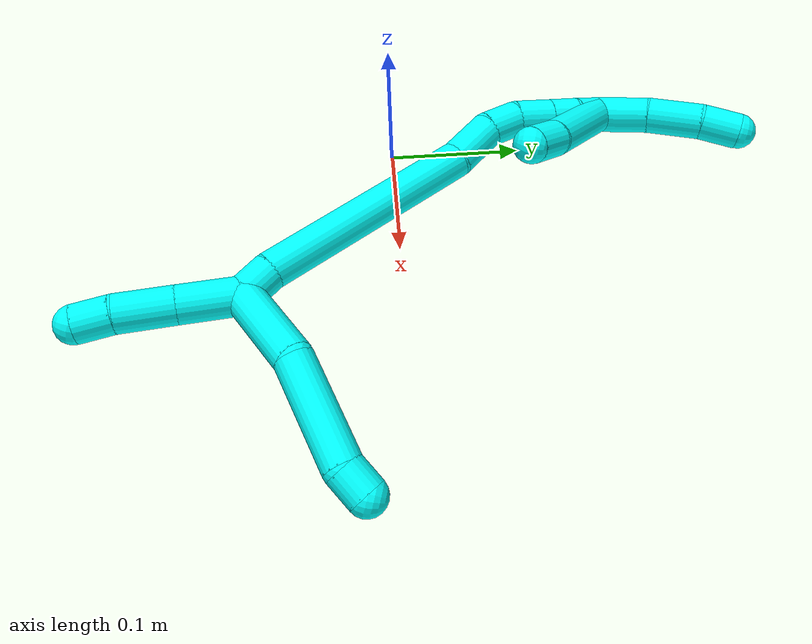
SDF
<sdf version="1.7">
 <world name="default">
  <model name="3">
   <static>0</static>
   <link name="3">
    <collision name="collision-cylinder-e_1_2_8">
     <pose>0.020603 0.005877 -0.020853 -2.86691 0.760287 -2.47556</pose>
     <geometry><cylinder><radius>0.0125</radius><length>0.059795</length></cylinder></geometry>
     <surface>
      <friction><ode><mu>1.16</mu><mu2>1.16</mu2><slip1>0</slip1><slip2>0</slip2></ode></friction>
      <contact><ode><kp>1e+06</kp><kd>1</kd><max_vel>0</max_vel><min_depth>0.001</min_depth></ode></contact>
     </surface>
    </collision>
    <visual name="visual-cylinder-e_1_2_8">
     <pose>0.020603 0.005877 -0.020853 -2.86691 0.760287 -2.47556</pose>
     <geometry><cylinder><radius>0.0125</radius><length>0.059795</length></cylinder></geometry>
     <material><ambient>0.003922 1 0.996078 1</ambient></material>
    </visual>
    <collision name="collision-cylinder-e_2_8_9">
     <pose>0.068697 0.007567 -0.063113 2.94848 0.900036 2.74584</pose>
     <geometry><cylinder><radius>0.0125</radius><length>0.070187</length></cylinder></geometry>
     <surface>
      <friction><ode><mu>1.16</mu><mu2>1.16</mu2><slip1>0</slip1><slip2>0</slip2></ode></friction>
      <contact><ode><kp>1e+06</kp><kd>1</kd><max_vel>0</max_vel><min_depth>0.001</min_depth></ode></contact>
     </surface>
    </collision>
    <visual name="visual-cylinder-e_2_8_9">
     <pose>0.068697 0.007567 -0.063113 2.94848 0.900036 2.74584</pose>
     <geometry><cylinder><radius>0.0125</radius><length>0.070187</length></cylinder></geometry>
     <material><ambient>0.003922 1 0.996078 1</ambient></material>
    </visual>
    <collision name="collision-cylinder-e_3_9_6">
     <pose>0.101646 0.001448 -0.092685 2.90915 0.576854 2.39183</pose>
     <geometry><cylinder><radius>0.0125</radius><length>0.020018</length></cylinder></geometry>
     <surface>
      <friction><ode><mu>1.16</mu><mu2>1.16</mu2><slip1>0</slip1><slip2>0</slip2></ode></friction>
      <contact><ode><kp>1e+06</kp><kd>1</kd><max_vel>0</max_vel><min_depth>0.001</min_depth></ode></contact>
     </surface>
    </collision>
    <visual name="visual-cylinder-e_3_9_6">
     <pose>0.101646 0.001448 -0.092685 2.90915 0.576854 2.39183</pose>
     <geometry><cylinder><radius>0.0125</radius><length>0.020018</length></cylinder></geometry>
     <material><ambient>0.003922 1 0.996078 1</ambient></material>
    </visual>
    <collision name="collision-cylinder-e_1_2_10">
     <pose>0.007021 -0.002507 0.018394 0.13544 0.36156 0.024792</pose>
     <geometry><cylinder><radius>0.0125</radius><length>0.039694</length></cylinder></geometry>
     <surface>
      <friction><ode><mu>1.16</mu><mu2>1.16</mu2><slip1>0</slip1><slip2>0</slip2></ode></friction>
      <contact><ode><kp>1e+06</kp><kd>1</kd><max_vel>0</max_vel><min_depth>0.001</min_depth></ode></contact>
     </surface>
    </collision>
    <visual name="visual-cylinder-e_1_2_10">
     <pose>0.007021 -0.002507 0.018394 0.13544 0.36156 0.024792</pose>
     <geometry><cylinder><radius>0.0125</radius><length>0.039694</length></cylinder></geometry>
     <material><ambient>0.003922 1 0.996078 1</ambient></material>
    </visual>
    <collision name="collision-cylinder-e_2_10_11">
     <pose>0.021322 -0.006563 0.053934 0.090124 0.400109 0.018286</pose>
     <geometry><cylinder><radius>0.0125</radius><length>0.037385</length></cylinder></geometry>
     <surface>
      <friction><ode><mu>1.16</mu><mu2>1.16</mu2><slip1>0</slip1><slip2>0</slip2></ode></friction>
      <contact><ode><kp>1e+06</kp><kd>1</kd><max_vel>0</max_vel><min_depth>0.001</min_depth></ode></contact>
     </surface>
    </collision>
    <visual name="visual-cylinder-e_2_10_11">
     <pose>0.021322 -0.006563 0.053934 0.090124 0.400109 0.018286</pose>
     <geometry><cylinder><radius>0.0125</radius><length>0.037385</length></cylinder></geometry>
     <material><ambient>0.003922 1 0.996078 1</ambient></material>
    </visual>
    <collision name="collision-cylinder-e_3_11_5">
     <pose>0.033516 -0.010576 0.081137 0.240274 0.442993 0.054356</pose>
     <geometry><cylinder><radius>0.0125</radius><length>0.022921</length></cylinder></geometry>
     <surface>
      <friction><ode><mu>1.16</mu><mu2>1.16</mu2><slip1>0</slip1><slip2>0</slip2></ode></friction>
      <contact><ode><kp>1e+06</kp><kd>1</kd><max_vel>0</max_vel><min_depth>0.001</min_depth></ode></contact>
     </surface>
    </collision>
    <visual name="visual-cylinder-e_3_11_5">
     <pose>0.033516 -0.010576 0.081137 0.240274 0.442993 0.054356</pose>
     <geometry><cylinder><radius>0.0125</radius><length>0.022921</length></cylinder></geometry>
     <material><ambient>0.003922 1 0.996078 1</ambient></material>
    </visual>
    <collision name="collision-cylinder-e_1_2_12">
     <pose>-0.010236 0.001156 -0.005522 -2.93531 -1.06705 2.79463</pose>
     <geometry><cylinder><radius>0.0125</radius><length>0.023377</length></cylinder></geometry>
     <surface>
      <friction><ode><mu>1.16</mu><mu2>1.16</mu2><slip1>0</slip1><slip2>0</slip2></ode></friction>
      <contact><ode><kp>1e+06</kp><kd>1</kd><max_vel>0</max_vel><min_depth>0.001</min_depth></ode></contact>
     </surface>
    </collision>
    <visual name="visual-cylinder-e_1_2_12">
     <pose>-0.010236 0.001156 -0.005522 -2.93531 -1.06705 2.79463</pose>
     <geometry><cylinder><radius>0.0125</radius><length>0.023377</length></cylinder></geometry>
     <material><ambient>0.003922 1 0.996078 1</ambient></material>
    </visual>
    <collision name="collision-cylinder-e_2_12_13">
     <pose>-0.076927 0.011664 -0.06064 -2.9552 -0.841317 2.72966</pose>
     <geometry><cylinder><radius>0.0125</radius><length>0.15145</length></cylinder></geometry>
     <surface>
      <friction><ode><mu>1.16</mu><mu2>1.16</mu2><slip1>0</slip1><slip2>0</slip2></ode></friction>
      <contact><ode><kp>1e+06</kp><kd>1</kd><max_vel>0</max_vel><min_depth>0.001</min_depth></ode></contact>
     </surface>
    </collision>
    <visual name="visual-cylinder-e_2_12_13">
     <pose>-0.076927 0.011664 -0.06064 -2.9552 -0.841317 2.72966</pose>
     <geometry><cylinder><radius>0.0125</radius><length>0.15145</length></cylinder></geometry>
     <material><ambient>0.003922 1 0.996078 1</ambient></material>
    </visual>
    <collision name="collision-cylinder-e_3_13_14">
     <pose>-0.148318 0.023633 -0.118785 -2.84456 -1.0314 2.62549</pose>
     <geometry><cylinder><radius>0.0125</radius><length>0.034816</length></cylinder></geometry>
     <surface>
      <friction><ode><mu>1.16</mu><mu2>1.16</mu2><slip1>0</slip1><slip2>0</slip2></ode></friction>
      <contact><ode><kp>1e+06</kp><kd>1</kd><max_vel>0</max_vel><min_depth>0.001</min_depth></ode></contact>
     </surface>
    </collision>
    <visual name="visual-cylinder-e_3_13_14">
     <pose>-0.148318 0.023633 -0.118785 -2.84456 -1.0314 2.62549</pose>
     <geometry><cylinder><radius>0.0125</radius><length>0.034816</length></cylinder></geometry>
     <material><ambient>0.003922 1 0.996078 1</ambient></material>
    </visual>
    <collision name="collision-cylinder-e_4_14_15">
     <pose>-0.171129 0.027177 -0.136441 -3.04024 -0.710374 2.86979</pose>
     <geometry><cylinder><radius>0.0125</radius><length>0.024149</length></cylinder></geometry>
     <surface>
      <friction><ode><mu>1.16</mu><mu2>1.16</mu2><slip1>0</slip1><slip2>0</slip2></ode></friction>
      <contact><ode><kp>1e+06</kp><kd>1</kd><max_vel>0</max_vel><min_depth>0.001</min_depth></ode></contact>
     </surface>
    </collision>
    <visual name="visual-cylinder-e_4_14_15">
     <pose>-0.171129 0.027177 -0.136441 -3.04024 -0.710374 2.86979</pose>
     <geometry><cylinder><radius>0.0125</radius><length>0.024149</length></cylinder></geometry>
     <material><ambient>0.003922 1 0.996078 1</ambient></material>
    </visual>
    <collision name="collision-cylinder-e_5_15_16">
     <pose>-0.183802 0.028269 -0.157488 -3.12769 -0.382126 3.06972</pose>
     <geometry><cylinder><radius>0.0125</radius><length>0.025739</length></cylinder></geometry>
     <surface>
      <friction><ode><mu>1.16</mu><mu2>1.16</mu2><slip1>0</slip1><slip2>0</slip2></ode></friction>
      <contact><ode><kp>1e+06</kp><kd>1</kd><max_vel>0</max_vel><min_depth>0.001</min_depth></ode></contact>
     </surface>
    </collision>
    <visual name="visual-cylinder-e_5_15_16">
     <pose>-0.183802 0.028269 -0.157488 -3.12769 -0.382126 3.06972</pose>
     <geometry><cylinder><radius>0.0125</radius><length>0.025739</length></cylinder></geometry>
     <material><ambient>0.003922 1 0.996078 1</ambient></material>
    </visual>
    <collision name="collision-cylinder-e_6_16_17">
     <pose>-0.19243 0.028548 -0.178666 -3.12934 -0.392882 3.08004</pose>
     <geometry><cylinder><radius>0.0125</radius><length>0.020001</length></cylinder></geometry>
     <surface>
      <friction><ode><mu>1.16</mu><mu2>1.16</mu2><slip1>0</slip1><slip2>0</slip2></ode></friction>
      <contact><ode><kp>1e+06</kp><kd>1</kd><max_vel>0</max_vel><min_depth>0.001</min_depth></ode></contact>
     </surface>
    </collision>
    <visual name="visual-cylinder-e_6_16_17">
     <pose>-0.19243 0.028548 -0.178666 -3.12934 -0.392882 3.08004</pose>
     <geometry><cylinder><radius>0.0125</radius><length>0.020001</length></cylinder></geometry>
     <material><ambient>0.003922 1 0.996078 1</ambient></material>
    </visual>
    <collision name="collision-cylinder-e_7_17_1">
     <pose>-0.201531 0.026876 -0.196492 2.93664 -0.541209 -2.43161</pose>
     <geometry><cylinder><radius>0.0125</radius><length>0.020468</length></cylinder></geometry>
     <surface>
      <friction><ode><mu>1.16</mu><mu2>1.16</mu2><slip1>0</slip1><slip2>0</slip2></ode></friction>
      <contact><ode><kp>1e+06</kp><kd>1</kd><max_vel>0</max_vel><min_depth>0.001</min_depth></ode></contact>
     </surface>
    </collision>
    <visual name="visual-cylinder-e_7_17_1">
     <pose>-0.201531 0.026876 -0.196492 2.93664 -0.541209 -2.43161</pose>
     <geometry><cylinder><radius>0.0125</radius><length>0.020468</length></cylinder></geometry>
     <material><ambient>0.003922 1 0.996078 1</ambient></material>
    </visual>
    <collision name="collision-cylinder-e_1_1_18">
     <pose>-0.205825 0.031477 -0.222069 -2.78202 0.053833 -0.294127</pose>
     <geometry><cylinder><radius>0.0125</radius><length>0.036351</length></cylinder></geometry>
     <surface>
      <friction><ode><mu>1.16</mu><mu2>1.16</mu2><slip1>0</slip1><slip2>0</slip2></ode></friction>
      <contact><ode><kp>1e+06</kp><kd>1</kd><max_vel>0</max_vel><min_depth>0.001</min_depth></ode></contact>
     </surface>
    </collision>
    <visual name="visual-cylinder-e_1_1_18">
     <pose>-0.205825 0.031477 -0.222069 -2.78202 0.053833 -0.294127</pose>
     <geometry><cylinder><radius>0.0125</radius><length>0.036351</length></cylinder></geometry>
     <material><ambient>0.003922 1 0.996078 1</ambient></material>
    </visual>
    <collision name="collision-cylinder-e_2_18_19">
     <pose>-0.202903 0.04259 -0.257037 -2.88455 0.104205 -0.767081</pose>
     <geometry><cylinder><radius>0.0125</radius><length>0.037385</length></cylinder></geometry>
     <surface>
      <friction><ode><mu>1.16</mu><mu2>1.16</mu2><slip1>0</slip1><slip2>0</slip2></ode></friction>
      <contact><ode><kp>1e+06</kp><kd>1</kd><max_vel>0</max_vel><min_depth>0.001</min_depth></ode></contact>
     </surface>
    </collision>
    <visual name="visual-cylinder-e_2_18_19">
     <pose>-0.202903 0.04259 -0.257037 -2.88455 0.104205 -0.767081</pose>
     <geometry><cylinder><radius>0.0125</radius><length>0.037385</length></cylinder></geometry>
     <material><ambient>0.003922 1 0.996078 1</ambient></material>
    </visual>
    <collision name="collision-cylinder-e_3_19_4">
     <pose>-0.199301 0.048596 -0.287982 -3.04315 0.126502 -1.8195</pose>
     <geometry><cylinder><radius>0.0125</radius><length>0.026264</length></cylinder></geometry>
     <surface>
      <friction><ode><mu>1.16</mu><mu2>1.16</mu2><slip1>0</slip1><slip2>0</slip2></ode></friction>
      <contact><ode><kp>1e+06</kp><kd>1</kd><max_vel>0</max_vel><min_depth>0.001</min_depth></ode></contact>
     </surface>
    </collision>
    <visual name="visual-cylinder-e_3_19_4">
     <pose>-0.199301 0.048596 -0.287982 -3.04315 0.126502 -1.8195</pose>
     <geometry><cylinder><radius>0.0125</radius><length>0.026264</length></cylinder></geometry>
     <material><ambient>0.003922 1 0.996078 1</ambient></material>
    </visual>
    <collision name="collision-cylinder-e_1_1_20">
     <pose>-0.176465 0.037596 -0.18781 -0.62669 0.958179 -0.333501</pose>
     <geometry><cylinder><radius>0.0125</radius><length>0.074162</length></cylinder></geometry>
     <surface>
      <friction><ode><mu>1.16</mu><mu2>1.16</mu2><slip1>0</slip1><slip2>0</slip2></ode></friction>
      <contact><ode><kp>1e+06</kp><kd>1</kd><max_vel>0</max_vel><min_depth>0.001</min_depth></ode></contact>
     </surface>
    </collision>
    <visual name="visual-cylinder-e_1_1_20">
     <pose>-0.176465 0.037596 -0.18781 -0.62669 0.958179 -0.333501</pose>
     <geometry><cylinder><radius>0.0125</radius><length>0.074162</length></cylinder></geometry>
     <material><ambient>0.003922 1 0.996078 1</ambient></material>
    </visual>
    <collision name="collision-cylinder-e_2_20_3">
     <pose>-0.136615 0.05393 -0.162682 -0.453474 0.82765 -0.201955</pose>
     <geometry><cylinder><radius>0.0125</radius><length>0.025838</length></cylinder></geometry>
     <surface>
      <friction><ode><mu>1.16</mu><mu2>1.16</mu2><slip1>0</slip1><slip2>0</slip2></ode></friction>
      <contact><ode><kp>1e+06</kp><kd>1</kd><max_vel>0</max_vel><min_depth>0.001</min_depth></ode></contact>
     </surface>
    </collision>
    <visual name="visual-cylinder-e_2_20_3">
     <pose>-0.136615 0.05393 -0.162682 -0.453474 0.82765 -0.201955</pose>
     <geometry><cylinder><radius>0.0125</radius><length>0.025838</length></cylinder></geometry>
     <material><ambient>0.003922 1 0.996078 1</ambient></material>
    </visual>
    <collision name="collision-sphere-3">
     <pose>-0.127102 0.057759 -0.154824 0 -0 0</pose>
     <geometry><sphere><radius>0.0125</radius></sphere></geometry>
     <surface>
      <friction><ode><mu>1.16</mu><mu2>1.16</mu2><slip1>0</slip1><slip2>0</slip2></ode></friction>
      <contact><ode><kp>1e+06</kp><kd>1</kd><max_vel>0</max_vel><min_depth>0.001</min_depth></ode></contact>
     </surface>
    </collision>
    <visual name="visual-sphere-3">
     <pose>-0.127102 0.057759 -0.154824 0 -0 0</pose>
     <geometry><sphere><radius>0.0125</radius></sphere></geometry>
     <material><ambient>0.003922 1 0.996078 1</ambient></material>
    </visual>
    <collision name="collision-sphere-20">
     <pose>-0.146128 0.0501 -0.17054 0 -0 0</pose>
     <geometry><sphere><radius>0.0125</radius></sphere></geometry>
     <surface>
      <friction><ode><mu>1.16</mu><mu2>1.16</mu2><slip1>0</slip1><slip2>0</slip2></ode></friction>
      <contact><ode><kp>1e+06</kp><kd>1</kd><max_vel>0</max_vel><min_depth>0.001</min_depth></ode></contact>
     </surface>
    </collision>
    <visual name="visual-sphere-20">
     <pose>-0.146128 0.0501 -0.17054 0 -0 0</pose>
     <geometry><sphere><radius>0.0125</radius></sphere></geometry>
     <material><ambient>0.003922 1 0.996078 1</ambient></material>
    </visual>
    <collision name="collision-sphere-4">
     <pose>-0.197645 0.049877 -0.300946 0 -0 0</pose>
     <geometry><sphere><radius>0.0125</radius></sphere></geometry>
     <surface>
      <friction><ode><mu>1.16</mu><mu2>1.16</mu2><slip1>0</slip1><slip2>0</slip2></ode></friction>
      <contact><ode><kp>1e+06</kp><kd>1</kd><max_vel>0</max_vel><min_depth>0.001</min_depth></ode></contact>
     </surface>
    </collision>
    <visual name="visual-sphere-4">
     <pose>-0.197645 0.049877 -0.300946 0 -0 0</pose>
     <geometry><sphere><radius>0.0125</radius></sphere></geometry>
     <material><ambient>0.003922 1 0.996078 1</ambient></material>
    </visual>
    <collision name="collision-sphere-11">
     <pose>0.028603 -0.008112 0.07108 0 -0 0</pose>
     <geometry><sphere><radius>0.0125</radius></sphere></geometry>
     <surface>
      <friction><ode><mu>1.16</mu><mu2>1.16</mu2><slip1>0</slip1><slip2>0</slip2></ode></friction>
      <contact><ode><kp>1e+06</kp><kd>1</kd><max_vel>0</max_vel><min_depth>0.001</min_depth></ode></contact>
     </surface>
    </collision>
    <visual name="visual-sphere-11">
     <pose>0.028603 -0.008112 0.07108 0 -0 0</pose>
     <geometry><sphere><radius>0.0125</radius></sphere></geometry>
     <material><ambient>0.003922 1 0.996078 1</ambient></material>
    </visual>
    <collision name="collision-sphere-10">
     <pose>0.014041 -0.005013 0.036788 0 -0 0</pose>
     <geometry><sphere><radius>0.0125</radius></sphere></geometry>
     <surface>
      <friction><ode><mu>1.16</mu><mu2>1.16</mu2><slip1>0</slip1><slip2>0</slip2></ode></friction>
      <contact><ode><kp>1e+06</kp><kd>1</kd><max_vel>0</max_vel><min_depth>0.001</min_depth></ode></contact>
     </surface>
    </collision>
    <visual name="visual-sphere-10">
     <pose>0.014041 -0.005013 0.036788 0 -0 0</pose>
     <geometry><sphere><radius>0.0125</radius></sphere></geometry>
     <material><ambient>0.003922 1 0.996078 1</ambient></material>
    </visual>
    <collision name="collision-sphere-6">
     <pose>0.107105 -0.000485 -0.100849 0 -0 0</pose>
     <geometry><sphere><radius>0.0125</radius></sphere></geometry>
     <surface>
      <friction><ode><mu>1.16</mu><mu2>1.16</mu2><slip1>0</slip1><slip2>0</slip2></ode></friction>
      <contact><ode><kp>1e+06</kp><kd>1</kd><max_vel>0</max_vel><min_depth>0.001</min_depth></ode></contact>
     </surface>
    </collision>
    <visual name="visual-sphere-6">
     <pose>0.107105 -0.000485 -0.100849 0 -0 0</pose>
     <geometry><sphere><radius>0.0125</radius></sphere></geometry>
     <material><ambient>0.003922 1 0.996078 1</ambient></material>
    </visual>
    <collision name="collision-sphere-9">
     <pose>0.096187 0.00338 -0.084521 0 -0 0</pose>
     <geometry><sphere><radius>0.0125</radius></sphere></geometry>
     <surface>
      <friction><ode><mu>1.16</mu><mu2>1.16</mu2><slip1>0</slip1><slip2>0</slip2></ode></friction>
      <contact><ode><kp>1e+06</kp><kd>1</kd><max_vel>0</max_vel><min_depth>0.001</min_depth></ode></contact>
     </surface>
    </collision>
    <visual name="visual-sphere-9">
     <pose>0.096187 0.00338 -0.084521 0 -0 0</pose>
     <geometry><sphere><radius>0.0125</radius></sphere></geometry>
     <material><ambient>0.003922 1 0.996078 1</ambient></material>
    </visual>
    <collision name="collision-sphere-2">
     <geometry><sphere><radius>0.0125</radius></sphere></geometry>
     <surface>
      <friction><ode><mu>1.16</mu><mu2>1.16</mu2><slip1>0</slip1><slip2>0</slip2></ode></friction>
      <contact><ode><kp>1e+06</kp><kd>1</kd><max_vel>0</max_vel><min_depth>0.001</min_depth></ode></contact>
     </surface>
    </collision>
    <visual name="visual-sphere-2">
     <geometry><sphere><radius>0.0125</radius></sphere></geometry>
     <material><ambient>0.003922 1 0.996078 1</ambient></material>
    </visual>
    <collision name="collision-sphere-19">
     <pose>-0.200958 0.047316 -0.275018 0 -0 0</pose>
     <geometry><sphere><radius>0.0125</radius></sphere></geometry>
     <surface>
      <friction><ode><mu>1.16</mu><mu2>1.16</mu2><slip1>0</slip1><slip2>0</slip2></ode></friction>
      <contact><ode><kp>1e+06</kp><kd>1</kd><max_vel>0</max_vel><min_depth>0.001</min_depth></ode></contact>
     </surface>
    </collision>
    <visual name="visual-sphere-19">
     <pose>-0.200958 0.047316 -0.275018 0 -0 0</pose>
     <geometry><sphere><radius>0.0125</radius></sphere></geometry>
     <material><ambient>0.003922 1 0.996078 1</ambient></material>
    </visual>
    <collision name="collision-sphere-8">
     <pose>0.041207 0.011753 -0.041705 0 -0 0</pose>
     <geometry><sphere><radius>0.0125</radius></sphere></geometry>
     <surface>
      <friction><ode><mu>1.16</mu><mu2>1.16</mu2><slip1>0</slip1><slip2>0</slip2></ode></friction>
      <contact><ode><kp>1e+06</kp><kd>1</kd><max_vel>0</max_vel><min_depth>0.001</min_depth></ode></contact>
     </surface>
    </collision>
    <visual name="visual-sphere-8">
     <pose>0.041207 0.011753 -0.041705 0 -0 0</pose>
     <geometry><sphere><radius>0.0125</radius></sphere></geometry>
     <material><ambient>0.003922 1 0.996078 1</ambient></material>
    </visual>
    <collision name="collision-sphere-5">
     <pose>0.038428 -0.01304 0.091194 0 -0 0</pose>
     <geometry><sphere><radius>0.0125</radius></sphere></geometry>
     <surface>
      <friction><ode><mu>1.16</mu><mu2>1.16</mu2><slip1>0</slip1><slip2>0</slip2></ode></friction>
      <contact><ode><kp>1e+06</kp><kd>1</kd><max_vel>0</max_vel><min_depth>0.001</min_depth></ode></contact>
     </surface>
    </collision>
    <visual name="visual-sphere-5">
     <pose>0.038428 -0.01304 0.091194 0 -0 0</pose>
     <geometry><sphere><radius>0.0125</radius></sphere></geometry>
     <material><ambient>0.003922 1 0.996078 1</ambient></material>
    </visual>
    <collision name="collision-sphere-12">
     <pose>-0.020473 0.002311 -0.011045 0 -0 0</pose>
     <geometry><sphere><radius>0.0125</radius></sphere></geometry>
     <surface>
      <friction><ode><mu>1.16</mu><mu2>1.16</mu2><slip1>0</slip1><slip2>0</slip2></ode></friction>
      <contact><ode><kp>1e+06</kp><kd>1</kd><max_vel>0</max_vel><min_depth>0.001</min_depth></ode></contact>
     </surface>
    </collision>
    <visual name="visual-sphere-12">
     <pose>-0.020473 0.002311 -0.011045 0 -0 0</pose>
     <geometry><sphere><radius>0.0125</radius></sphere></geometry>
     <material><ambient>0.003922 1 0.996078 1</ambient></material>
    </visual>
    <collision name="collision-sphere-13">
     <pose>-0.133382 0.021017 -0.110235 0 -0 0</pose>
     <geometry><sphere><radius>0.0125</radius></sphere></geometry>
     <surface>
      <friction><ode><mu>1.16</mu><mu2>1.16</mu2><slip1>0</slip1><slip2>0</slip2></ode></friction>
      <contact><ode><kp>1e+06</kp><kd>1</kd><max_vel>0</max_vel><min_depth>0.001</min_depth></ode></contact>
     </surface>
    </collision>
    <visual name="visual-sphere-13">
     <pose>-0.133382 0.021017 -0.110235 0 -0 0</pose>
     <geometry><sphere><radius>0.0125</radius></sphere></geometry>
     <material><ambient>0.003922 1 0.996078 1</ambient></material>
    </visual>
    <collision name="collision-sphere-14">
     <pose>-0.163255 0.02625 -0.127334 0 -0 0</pose>
     <geometry><sphere><radius>0.0125</radius></sphere></geometry>
     <surface>
      <friction><ode><mu>1.16</mu><mu2>1.16</mu2><slip1>0</slip1><slip2>0</slip2></ode></friction>
      <contact><ode><kp>1e+06</kp><kd>1</kd><max_vel>0</max_vel><min_depth>0.001</min_depth></ode></contact>
     </surface>
    </collision>
    <visual name="visual-sphere-14">
     <pose>-0.163255 0.02625 -0.127334 0 -0 0</pose>
     <geometry><sphere><radius>0.0125</radius></sphere></geometry>
     <material><ambient>0.003922 1 0.996078 1</ambient></material>
    </visual>
    <collision name="collision-sphere-15">
     <pose>-0.179003 0.028103 -0.145548 0 -0 0</pose>
     <geometry><sphere><radius>0.0125</radius></sphere></geometry>
     <surface>
      <friction><ode><mu>1.16</mu><mu2>1.16</mu2><slip1>0</slip1><slip2>0</slip2></ode></friction>
      <contact><ode><kp>1e+06</kp><kd>1</kd><max_vel>0</max_vel><min_depth>0.001</min_depth></ode></contact>
     </surface>
    </collision>
    <visual name="visual-sphere-15">
     <pose>-0.179003 0.028103 -0.145548 0 -0 0</pose>
     <geometry><sphere><radius>0.0125</radius></sphere></geometry>
     <material><ambient>0.003922 1 0.996078 1</ambient></material>
    </visual>
    <collision name="collision-sphere-16">
     <pose>-0.188601 0.028435 -0.169428 0 -0 0</pose>
     <geometry><sphere><radius>0.0125</radius></sphere></geometry>
     <surface>
      <friction><ode><mu>1.16</mu><mu2>1.16</mu2><slip1>0</slip1><slip2>0</slip2></ode></friction>
      <contact><ode><kp>1e+06</kp><kd>1</kd><max_vel>0</max_vel><min_depth>0.001</min_depth></ode></contact>
     </surface>
    </collision>
    <visual name="visual-sphere-16">
     <pose>-0.188601 0.028435 -0.169428 0 -0 0</pose>
     <geometry><sphere><radius>0.0125</radius></sphere></geometry>
     <material><ambient>0.003922 1 0.996078 1</ambient></material>
    </visual>
    <collision name="collision-sphere-17">
     <pose>-0.196258 0.028661 -0.187904 0 -0 0</pose>
     <geometry><sphere><radius>0.0125</radius></sphere></geometry>
     <surface>
      <friction><ode><mu>1.16</mu><mu2>1.16</mu2><slip1>0</slip1><slip2>0</slip2></ode></friction>
      <contact><ode><kp>1e+06</kp><kd>1</kd><max_vel>0</max_vel><min_depth>0.001</min_depth></ode></contact>
     </surface>
    </collision>
    <visual name="visual-sphere-17">
     <pose>-0.196258 0.028661 -0.187904 0 -0 0</pose>
     <geometry><sphere><radius>0.0125</radius></sphere></geometry>
     <material><ambient>0.003922 1 0.996078 1</ambient></material>
    </visual>
    <collision name="collision-sphere-1">
     <pose>-0.206803 0.025091 -0.20508 0 -0 0</pose>
     <geometry><sphere><radius>0.0125</radius></sphere></geometry>
     <surface>
      <friction><ode><mu>1.16</mu><mu2>1.16</mu2><slip1>0</slip1><slip2>0</slip2></ode></friction>
      <contact><ode><kp>1e+06</kp><kd>1</kd><max_vel>0</max_vel><min_depth>0.001</min_depth></ode></contact>
     </surface>
    </collision>
    <visual name="visual-sphere-1">
     <pose>-0.206803 0.025091 -0.20508 0 -0 0</pose>
     <geometry><sphere><radius>0.0125</radius></sphere></geometry>
     <material><ambient>0.003922 1 0.996078 1</ambient></material>
    </visual>
    <collision name="collision-sphere-18">
     <pose>-0.204847 0.037863 -0.239057 0 -0 0</pose>
     <geometry><sphere><radius>0.0125</radius></sphere></geometry>
     <surface>
      <friction><ode><mu>1.16</mu><mu2>1.16</mu2><slip1>0</slip1><slip2>0</slip2></ode></friction>
      <contact><ode><kp>1e+06</kp><kd>1</kd><max_vel>0</max_vel><min_depth>0.001</min_depth></ode></contact>
     </surface>
    </collision>
    <visual name="visual-sphere-18">
     <pose>-0.204847 0.037863 -0.239057 0 -0 0</pose>
     <geometry><sphere><radius>0.0125</radius></sphere></geometry>
     <material><ambient>0.003922 1 0.996078 1</ambient></material>
    </visual>
    <inertial>
     <pose>-0.08117 0.018187 -0.099594 0 -0 0</pose>
     <mass>0.75</mass>
     <inertia>
      <ixx>-0.000109</ixx>
      <ixy>0</ixy>
      <ixz>0</ixz>
      <iyy>0.000458</iyy>
      <iyz>0</iyz>
      <izz>7.9e-05</izz>
     </inertia>
    </inertial>
   </link>
   <pose>0.185847 -0.100184 0.058153 1.38237 0.085679 -0.249772</pose>
  </model>
 </world>
</sdf>
